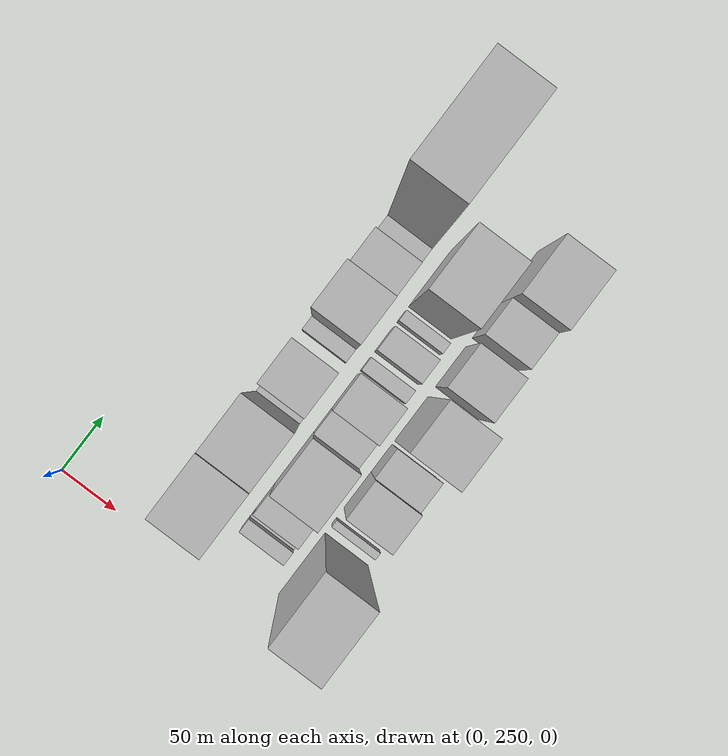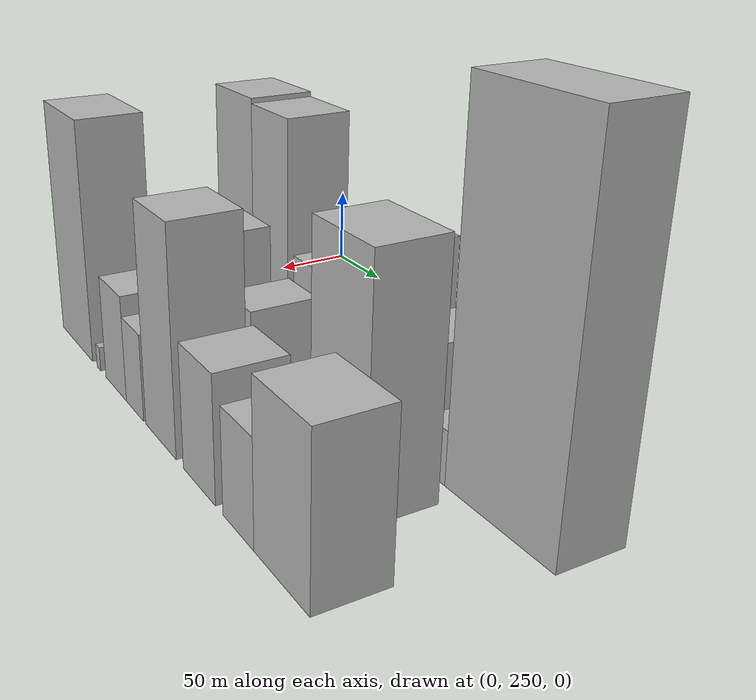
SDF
<sdf version="1.6">
 <world name="default">
  <model name="building_25">
   <static>1</static>
   <pose>100.0000 315.9877 0 0.000000 0.000000 0.000000</pose>
   <link name="link">
    <pose>0 0 75.00 0 0 0</pose>
    <collision name="collision"><geometry><box><size>40.0000 48.6444 150.0000</size></box></geometry></collision>
    <visual name="visual">
     <cast_shadows>0</cast_shadows>
     <geometry><box><size>40.0000 48.6444 150.0000</size></box></geometry>
     <material>
      <script>
       <uri>model://HANNAS_wall/materials/scripts</uri>
       <uri>model://HANNAS_wall/materials/textures</uri>
       <name>vrc/HANNAS_wall</name>
      </script>
     </material>
    </visual>
   </link>
  </model>
  <model name="building_26">
   <static>1</static>
   <pose>100.0000 362.5225 0 0.000000 0.000000 0.000000</pose>
   <link name="link">
    <pose>0 0 73.50 0 0 0</pose>
    <collision name="collision"><geometry><box><size>40.0000 44.4252 147.0000</size></box></geometry></collision>
    <visual name="visual">
     <cast_shadows>0</cast_shadows>
     <geometry><box><size>40.0000 44.4252 147.0000</size></box></geometry>
     <material>
      <script>
       <uri>model://HANNAS_wall/materials/scripts</uri>
       <uri>model://HANNAS_wall/materials/textures</uri>
       <name>vrc/HANNAS_wall</name>
      </script>
     </material>
    </visual>
   </link>
  </model>
  <model name="building_27">
   <static>1</static>
   <pose>100.0000 388.2325 0 0.000000 0.000000 0.000000</pose>
   <link name="link">
    <pose>0 0 7.50 0 0 0</pose>
    <collision name="collision"><geometry><box><size>40.0000 6.9949 15.0000</size></box></geometry></collision>
    <visual name="visual">
     <cast_shadows>0</cast_shadows>
     <geometry><box><size>40.0000 6.9949 15.0000</size></box></geometry>
     <material>
      <script>
       <uri>model://HANNAS_wall/materials/scripts</uri>
       <uri>model://HANNAS_wall/materials/textures</uri>
       <name>vrc/HANNAS_wall</name>
      </script>
     </material>
    </visual>
   </link>
  </model>
  <model name="building_28">
   <static>1</static>
   <pose>100.0000 411.1243 0 0.000000 0.000000 0.000000</pose>
   <link name="link">
    <pose>0 0 34.50 0 0 0</pose>
    <collision name="collision"><geometry><box><size>40.0000 38.7887 69.0000</size></box></geometry></collision>
    <visual name="visual">
     <cast_shadows>0</cast_shadows>
     <geometry><box><size>40.0000 38.7887 69.0000</size></box></geometry>
     <material>
      <script>
       <uri>model://HANNAS_wall/materials/scripts</uri>
       <uri>model://HANNAS_wall/materials/textures</uri>
       <name>vrc/HANNAS_wall</name>
      </script>
     </material>
    </visual>
   </link>
  </model>
  <model name="building_29">
   <static>1</static>
   <pose>100.0000 446.5157 0 0.000000 0.000000 0.000000</pose>
   <link name="link">
    <pose>0 0 12.00 0 0 0</pose>
    <collision name="collision"><geometry><box><size>40.0000 11.9940 24.0000</size></box></geometry></collision>
    <visual name="visual">
     <cast_shadows>0</cast_shadows>
     <geometry><box><size>40.0000 11.9940 24.0000</size></box></geometry>
     <material>
      <script>
       <uri>model://HANNAS_wall/materials/scripts</uri>
       <uri>model://HANNAS_wall/materials/textures</uri>
       <name>vrc/HANNAS_wall</name>
      </script>
     </material>
    </visual>
   </link>
  </model>
  <model name="building_30">
   <static>1</static>
   <pose>100.0000 471.8779 0 0.000000 0.000000 0.000000</pose>
   <link name="link">
    <pose>0 0 52.50 0 0 0</pose>
    <collision name="collision"><geometry><box><size>40.0000 38.7305 105.0000</size></box></geometry></collision>
    <visual name="visual">
     <cast_shadows>0</cast_shadows>
     <geometry><box><size>40.0000 38.7305 105.0000</size></box></geometry>
     <material>
      <script>
       <uri>model://HANNAS_wall/materials/scripts</uri>
       <uri>model://HANNAS_wall/materials/textures</uri>
       <name>vrc/HANNAS_wall</name>
      </script>
     </material>
    </visual>
   </link>
  </model>
  <model name="building_31">
   <static>1</static>
   <pose>100.0000 507.8915 0 0.000000 0.000000 0.000000</pose>
   <link name="link">
    <pose>0 0 33.00 0 0 0</pose>
    <collision name="collision"><geometry><box><size>40.0000 33.2967 66.0000</size></box></geometry></collision>
    <visual name="visual">
     <cast_shadows>0</cast_shadows>
     <geometry><box><size>40.0000 33.2967 66.0000</size></box></geometry>
     <material>
      <script>
       <uri>model://HANNAS_wall/materials/scripts</uri>
       <uri>model://HANNAS_wall/materials/textures</uri>
       <name>vrc/HANNAS_wall</name>
      </script>
     </material>
    </visual>
   </link>
  </model>
  <model name="building_32">
   <static>1</static>
   <pose>100.0000 533.4100 0 0.000000 0.000000 0.000000</pose>
   <link name="link">
    <pose>0 0 15.00 0 0 0</pose>
    <collision name="collision"><geometry><box><size>40.0000 17.7402 30.0000</size></box></geometry></collision>
    <visual name="visual">
     <cast_shadows>0</cast_shadows>
     <geometry><box><size>40.0000 17.7402 30.0000</size></box></geometry>
     <material>
      <script>
       <uri>model://HANNAS_wall/materials/scripts</uri>
       <uri>model://HANNAS_wall/materials/textures</uri>
       <name>vrc/HANNAS_wall</name>
      </script>
     </material>
    </visual>
   </link>
  </model>
  <model name="building_33">
   <static>1</static>
   <pose>100.0000 581.3215 0 0.000000 0.000000 0.000000</pose>
   <link name="link">
    <pose>0 0 100.50 0 0 0</pose>
    <collision name="collision"><geometry><box><size>40.0000 78.0828 201.0000</size></box></geometry></collision>
    <visual name="visual">
     <cast_shadows>0</cast_shadows>
     <geometry><box><size>40.0000 78.0828 201.0000</size></box></geometry>
     <material>
      <script>
       <uri>model://HANNAS_wall/materials/scripts</uri>
       <uri>model://HANNAS_wall/materials/textures</uri>
       <name>vrc/HANNAS_wall</name>
      </script>
     </material>
    </visual>
   </link>
  </model>
  <model name="building_58">
   <static>1</static>
   <pose>152.0000 303.0608 0 0.000000 0.000000 0.000000</pose>
   <link name="link">
    <pose>0 0 13.50 0 0 0</pose>
    <collision name="collision"><geometry><box><size>40.0000 11.6728 27.0000</size></box></geometry></collision>
    <visual name="visual">
     <cast_shadows>0</cast_shadows>
     <geometry><box><size>40.0000 11.6728 27.0000</size></box></geometry>
     <material>
      <script>
       <uri>model://HANNAS_wall/materials/scripts</uri>
       <uri>model://HANNAS_wall/materials/textures</uri>
       <name>vrc/HANNAS_wall</name>
      </script>
     </material>
    </visual>
   </link>
  </model>
  <model name="building_59">
   <static>1</static>
   <pose>152.0000 312.2449 0 0.000000 0.000000 0.000000</pose>
   <link name="link">
    <pose>0 0 7.50 0 0 0</pose>
    <collision name="collision"><geometry><box><size>40.0000 6.6955 15.0000</size></box></geometry></collision>
    <visual name="visual">
     <cast_shadows>0</cast_shadows>
     <geometry><box><size>40.0000 6.6955 15.0000</size></box></geometry>
     <material>
      <script>
       <uri>model://HANNAS_wall/materials/scripts</uri>
       <uri>model://HANNAS_wall/materials/textures</uri>
       <name>vrc/HANNAS_wall</name>
      </script>
     </material>
    </visual>
   </link>
  </model>
  <model name="building_60">
   <static>1</static>
   <pose>152.0000 327.0009 0 0.000000 0.000000 0.000000</pose>
   <link name="link">
    <pose>0 0 22.50 0 0 0</pose>
    <collision name="collision"><geometry><box><size>40.0000 22.8165 45.0000</size></box></geometry></collision>
    <visual name="visual">
     <cast_shadows>0</cast_shadows>
     <geometry><box><size>40.0000 22.8165 45.0000</size></box></geometry>
     <material>
      <script>
       <uri>model://HANNAS_wall/materials/scripts</uri>
       <uri>model://HANNAS_wall/materials/textures</uri>
       <name>vrc/HANNAS_wall</name>
      </script>
     </material>
    </visual>
   </link>
  </model>
  <model name="building_61">
   <static>1</static>
   <pose>152.0000 362.2058 0 0.000000 0.000000 0.000000</pose>
   <link name="link">
    <pose>0 0 43.50 0 0 0</pose>
    <collision name="collision"><geometry><box><size>40.0000 47.5934 87.0000</size></box></geometry></collision>
    <visual name="visual">
     <cast_shadows>0</cast_shadows>
     <geometry><box><size>40.0000 47.5934 87.0000</size></box></geometry>
     <material>
      <script>
       <uri>model://HANNAS_wall/materials/scripts</uri>
       <uri>model://HANNAS_wall/materials/textures</uri>
       <name>vrc/HANNAS_wall</name>
      </script>
     </material>
    </visual>
   </link>
  </model>
  <model name="building_62">
   <static>1</static>
   <pose>152.0000 396.8749 0 0.000000 0.000000 0.000000</pose>
   <link name="link">
    <pose>0 0 21.00 0 0 0</pose>
    <collision name="collision"><geometry><box><size>40.0000 21.7447 42.0000</size></box></geometry></collision>
    <visual name="visual">
     <cast_shadows>0</cast_shadows>
     <geometry><box><size>40.0000 21.7447 42.0000</size></box></geometry>
     <material>
      <script>
       <uri>model://HANNAS_wall/materials/scripts</uri>
       <uri>model://HANNAS_wall/materials/textures</uri>
       <name>vrc/HANNAS_wall</name>
      </script>
     </material>
    </visual>
   </link>
  </model>
  <model name="building_63">
   <static>1</static>
   <pose>152.0000 423.7378 0 0.000000 0.000000 0.000000</pose>
   <link name="link">
    <pose>0 0 31.50 0 0 0</pose>
    <collision name="collision"><geometry><box><size>40.0000 31.9811 63.0000</size></box></geometry></collision>
    <visual name="visual">
     <cast_shadows>0</cast_shadows>
     <geometry><box><size>40.0000 31.9811 63.0000</size></box></geometry>
     <material>
      <script>
       <uri>model://HANNAS_wall/materials/scripts</uri>
       <uri>model://HANNAS_wall/materials/textures</uri>
       <name>vrc/HANNAS_wall</name>
      </script>
     </material>
    </visual>
   </link>
  </model>
  <model name="building_64">
   <static>1</static>
   <pose>152.0000 448.6195 0 0.000000 0.000000 0.000000</pose>
   <link name="link">
    <pose>0 0 13.50 0 0 0</pose>
    <collision name="collision"><geometry><box><size>40.0000 11.7822 27.0000</size></box></geometry></collision>
    <visual name="visual">
     <cast_shadows>0</cast_shadows>
     <geometry><box><size>40.0000 11.7822 27.0000</size></box></geometry>
     <material>
      <script>
       <uri>model://HANNAS_wall/materials/scripts</uri>
       <uri>model://HANNAS_wall/materials/textures</uri>
       <name>vrc/HANNAS_wall</name>
      </script>
     </material>
    </visual>
   </link>
  </model>
  <model name="building_65">
   <static>1</static>
   <pose>152.0000 471.2386 0 0.000000 0.000000 0.000000</pose>
   <link name="link">
    <pose>0 0 18.00 0 0 0</pose>
    <collision name="collision"><geometry><box><size>40.0000 21.4561 36.0000</size></box></geometry></collision>
    <visual name="visual">
     <cast_shadows>0</cast_shadows>
     <geometry><box><size>40.0000 21.4561 36.0000</size></box></geometry>
     <material>
      <script>
       <uri>model://HANNAS_wall/materials/scripts</uri>
       <uri>model://HANNAS_wall/materials/textures</uri>
       <name>vrc/HANNAS_wall</name>
      </script>
     </material>
    </visual>
   </link>
  </model>
  <model name="building_66">
   <static>1</static>
   <pose>152.0000 492.7395 0 0.000000 0.000000 0.000000</pose>
   <link name="link">
    <pose>0 0 10.50 0 0 0</pose>
    <collision name="collision"><geometry><box><size>40.0000 9.5457 21.0000</size></box></geometry></collision>
    <visual name="visual">
     <cast_shadows>0</cast_shadows>
     <geometry><box><size>40.0000 9.5457 21.0000</size></box></geometry>
     <material>
      <script>
       <uri>model://HANNAS_wall/materials/scripts</uri>
       <uri>model://HANNAS_wall/materials/textures</uri>
       <name>vrc/HANNAS_wall</name>
      </script>
     </material>
    </visual>
   </link>
  </model>
  <model name="building_67">
   <static>1</static>
   <pose>152.0000 527.9840 0 0.000000 0.000000 0.000000</pose>
   <link name="link">
    <pose>0 0 67.50 0 0 0</pose>
    <collision name="collision"><geometry><box><size>40.0000 50.9434 135.0000</size></box></geometry></collision>
    <visual name="visual">
     <cast_shadows>0</cast_shadows>
     <geometry><box><size>40.0000 50.9434 135.0000</size></box></geometry>
     <material>
      <script>
       <uri>model://HANNAS_wall/materials/scripts</uri>
       <uri>model://HANNAS_wall/materials/textures</uri>
       <name>vrc/HANNAS_wall</name>
      </script>
     </material>
    </visual>
   </link>
  </model>
  <model name="building_98">
   <static>1</static>
   <pose>204.0000 302.2851 0 0.000000 0.000000 0.000000</pose>
   <link name="link">
    <pose>0 0 73.50 0 0 0</pose>
    <collision name="collision"><geometry><box><size>40.0000 57.1231 147.0000</size></box></geometry></collision>
    <visual name="visual">
     <cast_shadows>0</cast_shadows>
     <geometry><box><size>40.0000 57.1231 147.0000</size></box></geometry>
     <material>
      <script>
       <uri>model://HANNAS_wall/materials/scripts</uri>
       <uri>model://HANNAS_wall/materials/textures</uri>
       <name>vrc/HANNAS_wall</name>
      </script>
     </material>
    </visual>
   </link>
  </model>
  <model name="building_99">
   <static>1</static>
   <pose>204.0000 341.9948 0 0.000000 0.000000 0.000000</pose>
   <link name="link">
    <pose>0 0 7.50 0 0 0</pose>
    <collision name="collision"><geometry><box><size>40.0000 6.2962 15.0000</size></box></geometry></collision>
    <visual name="visual">
     <cast_shadows>0</cast_shadows>
     <geometry><box><size>40.0000 6.2962 15.0000</size></box></geometry>
     <material>
      <script>
       <uri>model://HANNAS_wall/materials/scripts</uri>
       <uri>model://HANNAS_wall/materials/textures</uri>
       <name>vrc/HANNAS_wall</name>
      </script>
     </material>
    </visual>
   </link>
  </model>
  <model name="building_100">
   <static>1</static>
   <pose>204.0000 370.9052 0 0.000000 0.000000 0.000000</pose>
   <link name="link">
    <pose>0 0 31.50 0 0 0</pose>
    <collision name="collision"><geometry><box><size>40.0000 33.5244 63.0000</size></box></geometry></collision>
    <visual name="visual">
     <cast_shadows>0</cast_shadows>
     <geometry><box><size>40.0000 33.5244 63.0000</size></box></geometry>
     <material>
      <script>
       <uri>model://HANNAS_wall/materials/scripts</uri>
       <uri>model://HANNAS_wall/materials/textures</uri>
       <name>vrc/HANNAS_wall</name>
      </script>
     </material>
    </visual>
   </link>
  </model>
  <model name="building_101">
   <static>1</static>
   <pose>204.0000 400.6590 0 0.000000 0.000000 0.000000</pose>
   <link name="link">
    <pose>0 0 25.50 0 0 0</pose>
    <collision name="collision"><geometry><box><size>40.0000 25.9834 51.0000</size></box></geometry></collision>
    <visual name="visual">
     <cast_shadows>0</cast_shadows>
     <geometry><box><size>40.0000 25.9834 51.0000</size></box></geometry>
     <material>
      <script>
       <uri>model://HANNAS_wall/materials/scripts</uri>
       <uri>model://HANNAS_wall/materials/textures</uri>
       <name>vrc/HANNAS_wall</name>
      </script>
     </material>
    </visual>
   </link>
  </model>
  <model name="building_102">
   <static>1</static>
   <pose>204.0000 437.2998 0 0.000000 0.000000 0.000000</pose>
   <link name="link">
    <pose>0 0 63.00 0 0 0</pose>
    <collision name="collision"><geometry><box><size>40.0000 41.2980 126.0000</size></box></geometry></collision>
    <visual name="visual">
     <cast_shadows>0</cast_shadows>
     <geometry><box><size>40.0000 41.2980 126.0000</size></box></geometry>
     <material>
      <script>
       <uri>model://HANNAS_wall/materials/scripts</uri>
       <uri>model://HANNAS_wall/materials/textures</uri>
       <name>vrc/HANNAS_wall</name>
      </script>
     </material>
    </visual>
   </link>
  </model>
  <model name="building_103">
   <static>1</static>
   <pose>204.0000 485.7233 0 0.000000 0.000000 0.000000</pose>
   <link name="link">
    <pose>0 0 34.50 0 0 0</pose>
    <collision name="collision"><geometry><box><size>40.0000 37.5490 69.0000</size></box></geometry></collision>
    <visual name="visual">
     <cast_shadows>0</cast_shadows>
     <geometry><box><size>40.0000 37.5490 69.0000</size></box></geometry>
     <material>
      <script>
       <uri>model://HANNAS_wall/materials/scripts</uri>
       <uri>model://HANNAS_wall/materials/textures</uri>
       <name>vrc/HANNAS_wall</name>
      </script>
     </material>
    </visual>
   </link>
  </model>
  <model name="building_104">
   <static>1</static>
   <pose>204.0000 528.3039 0 0.000000 0.000000 0.000000</pose>
   <link name="link">
    <pose>0 0 28.50 0 0 0</pose>
    <collision name="collision"><geometry><box><size>40.0000 31.6123 57.0000</size></box></geometry></collision>
    <visual name="visual">
     <cast_shadows>0</cast_shadows>
     <geometry><box><size>40.0000 31.6123 57.0000</size></box></geometry>
     <material>
      <script>
       <uri>model://HANNAS_wall/materials/scripts</uri>
       <uri>model://HANNAS_wall/materials/textures</uri>
       <name>vrc/HANNAS_wall</name>
      </script>
     </material>
    </visual>
   </link>
  </model>
  <model name="building_105">
   <static>1</static>
   <pose>204.0000 568.8019 0 0.000000 0.000000 0.000000</pose>
   <link name="link">
    <pose>0 0 43.50 0 0 0</pose>
    <collision name="collision"><geometry><box><size>40.0000 49.3835 87.0000</size></box></geometry></collision>
    <visual name="visual">
     <cast_shadows>0</cast_shadows>
     <geometry><box><size>40.0000 49.3835 87.0000</size></box></geometry>
     <material>
      <script>
       <uri>model://HANNAS_wall/materials/scripts</uri>
       <uri>model://HANNAS_wall/materials/textures</uri>
       <name>vrc/HANNAS_wall</name>
      </script>
     </material>
    </visual>
   </link>
  </model>
 </world>
</sdf>
